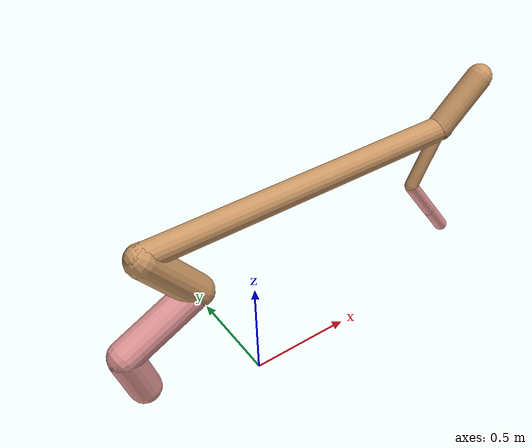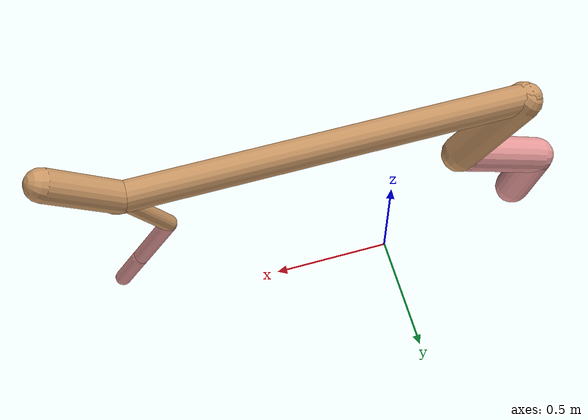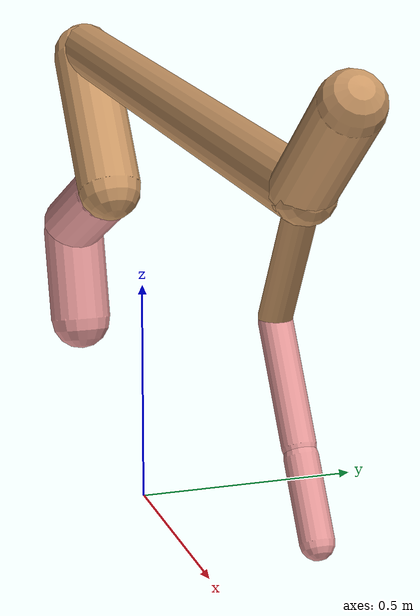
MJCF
<mujoco model="cheetah">
  <compiler angle="radian" coordinate="local" inertiafromgeom="true" settotalmass="14" />
  <default>
    <joint armature=".1" damping=".01" limited="true" solimplimit="0 .8 .03" solreflimit=".02 1" stiffness="8" />
    <geom conaffinity="0" condim="3" contype="1" friction="0.8 .1 .1" rgba="0.8 0.6 .4 1" solimp="0.0 0.8 0.01" solref="0.02 1" />
    <motor ctrllimited="true" ctrlrange="-1 1" />
  </default>
  <size nstack="300000" nuser_geom="1" />
  <option gravity="0 0 -9.81" timestep="0.01" />
  <worldbody>
    <body name="torso" pos="0.0 0.0 0.9520371671837102">
      <joint armature="0" axis="1 0 0" damping="0" limited="false" name="ignorex" pos="0 0 0" stiffness="0" type="slide" />
      <joint armature="0" axis="0 0 1" damping="0" limited="false" name="ignorez" pos="0 0 0" stiffness="0" type="slide" />
      <joint armature="0" axis="0 1 0" damping="0" limited="false" name="ignorey" pos="0 0 0" stiffness="0" type="hinge" />
      <geom fromto="-0.5 0.0 0.0 1.0565072976081882 0.0 0.0" name="torso" size="0.05824513059115912" type="capsule" />
      <geom axisangle="0 1 0 .87" name="head" pos="1.1565072976081883 0.0 0.1" size="0.060974951181496616 0.15" type="capsule" />

      <body name="bthigh" pos="-.5 0 0">
        <joint axis="0 1 0" damping="6" name="bthigh" pos="0 0 0" range="-.52 1.05" stiffness="240" type="hinge" />
        <geom axisangle="0 1 0 -3.8" name="bthigh" pos="0.11888315006785362 0.0 -0.1545480950882097" size="0.07377824876527263 0.17597066884884577" type="capsule" />
        <body name="bshin" pos="0.19776630013570723 0.0 -0.2990961901764194">
          <joint axis="0 1 0" damping="4.5" name="bshin" pos="0 0 0" range="-.785 .785" stiffness="180" type="hinge" />
          <geom axisangle="0 1 0 -2.03" name="bshin" pos="-0.16865621552606386 0.0 -0.08432810776303193" rgba="0.9 0.6 0.6 1" size="0.07377824876527263 0.18203862294708184" type="capsule" />
          <body name="bfoot" pos="-0.3373124310521277 0.0 -0.16865621552606386">
            <joint axis="0 1 0" damping="3" name="bfoot" pos="0 0 0" range="-.4 .785" stiffness="120" type="hinge" />
            <geom axisangle="0 1 0 -.27" name="bfoot" pos="0.03593230430818675 0.0 -0.11618111726313718" rgba="0.9 0.6 0.6 1" size="0.07377824876527263 0.11407753704683796" type="capsule" />
            <inertial mass="10" />
          </body>
        </body>
      </body>
      <body name="fthigh" pos="1.0565072976081882 0.0 0.0">
        <joint axis="0 1 0" damping="4.5" name="fthigh" pos="0 0 0" range="-1.5 0.8" stiffness="180" type="hinge" />
        <geom axisangle="0 1 0 .52" name="fthigh" pos="-0.07903798624630894 0.0 -0.13549369070795816" size="0.0322 0.15093710252918063" type="capsule" />
        <body name="fshin" pos="-0.15807597249261787 0.0 -0.27098738141591633">
          <joint axis="0 1 0" damping="3" name="fshin" pos="0 0 0" range="-1.2 1.1" stiffness="120" type="hinge" />
          <geom axisangle="0 1 0 -.6" name="fshin" pos="0.0733700183006191 0.0 -0.10158925610854952" rgba="0.9 0.6 0.6 1" size="0.0322 0.12029573585032441" type="capsule" />
          <body name="ffoot" pos="0.1467400366012382 0.0 -0.20317851221709904">
            <joint axis="0 1 0" damping="1.5" name="ffoot" pos="0 0 0" range="-3.1 -0.3" stiffness="60" type="hinge" />
            <geom axisangle="0 1 0 -.6" name="ffoot" pos="0.0501050654520121 0.0 -0.07794121292535217" rgba="0.9 0.6 0.6 1" size="0.0322 0.07944058027851612" type="capsule" />
            <inertial mass="10" />
          </body>
        </body>
      </body>
    </body>
  </worldbody>
  <actuator>
    <motor gear="120" joint="bthigh" name="bthigh" />
    <motor gear="90" joint="bshin" name="bshin" />
    <motor gear="60" joint="bfoot" name="bfoot" />
    <motor gear="120" joint="fthigh" name="fthigh" />
    <motor gear="60" joint="fshin" name="fshin" />
    <motor gear="30" joint="ffoot" name="ffoot" />
  </actuator>
</mujoco>
